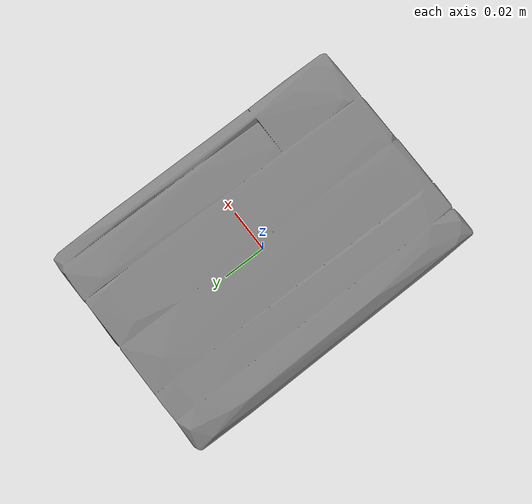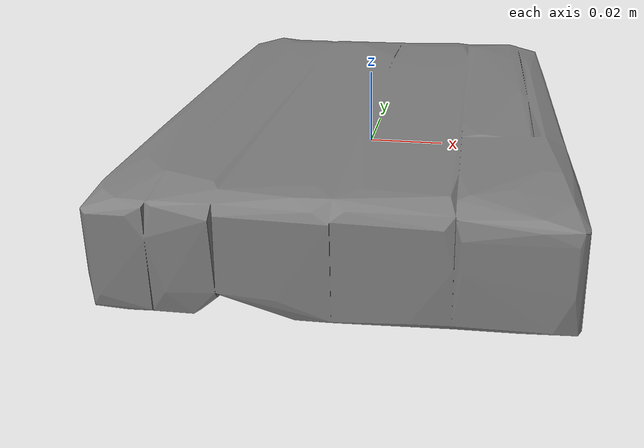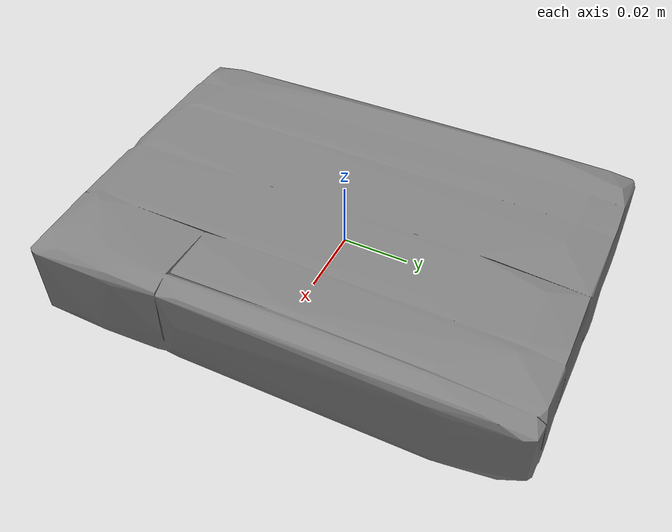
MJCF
<mujoco model="hard_drive_Seagate_Archive_HDD_8_TB_Internal_hard_drive_SATA_6Gbs_35_ST8000AS0002_M">
  <default>
    <default class="visual">
      <geom group="2" type="mesh" contype="0" conaffinity="0" />
    </default>
    <default class="collision">
      <geom group="3" type="mesh" />
    </default>
  </default>
  <asset>
    <mesh file="hard_drive_Seagate_Archive_HDD_8_TB_Internal_hard_drive_SATA_6Gbs_35_ST8000AS0002_M.stl" />
    <mesh file="hard_drive_Seagate_Archive_HDD_8_TB_Internal_hard_drive_SATA_6Gbs_35_ST8000AS0002_M_collision_0.stl" />
    <mesh file="hard_drive_Seagate_Archive_HDD_8_TB_Internal_hard_drive_SATA_6Gbs_35_ST8000AS0002_M_collision_1.stl" />
    <mesh file="hard_drive_Seagate_Archive_HDD_8_TB_Internal_hard_drive_SATA_6Gbs_35_ST8000AS0002_M_collision_2.stl" />
    <mesh file="hard_drive_Seagate_Archive_HDD_8_TB_Internal_hard_drive_SATA_6Gbs_35_ST8000AS0002_M_collision_3.stl" />
    <mesh file="hard_drive_Seagate_Archive_HDD_8_TB_Internal_hard_drive_SATA_6Gbs_35_ST8000AS0002_M_collision_4.stl" />
    <mesh file="hard_drive_Seagate_Archive_HDD_8_TB_Internal_hard_drive_SATA_6Gbs_35_ST8000AS0002_M_collision_5.stl" />
    <mesh file="hard_drive_Seagate_Archive_HDD_8_TB_Internal_hard_drive_SATA_6Gbs_35_ST8000AS0002_M_collision_6.stl" />
    <mesh file="hard_drive_Seagate_Archive_HDD_8_TB_Internal_hard_drive_SATA_6Gbs_35_ST8000AS0002_M_collision_7.stl" />
    <mesh file="hard_drive_Seagate_Archive_HDD_8_TB_Internal_hard_drive_SATA_6Gbs_35_ST8000AS0002_M_collision_8.stl" />
    <mesh file="hard_drive_Seagate_Archive_HDD_8_TB_Internal_hard_drive_SATA_6Gbs_35_ST8000AS0002_M_collision_9.stl" />
    <mesh file="hard_drive_Seagate_Archive_HDD_8_TB_Internal_hard_drive_SATA_6Gbs_35_ST8000AS0002_M_collision_10.stl" />
    <mesh file="hard_drive_Seagate_Archive_HDD_8_TB_Internal_hard_drive_SATA_6Gbs_35_ST8000AS0002_M_collision_11.stl" />
    <mesh file="hard_drive_Seagate_Archive_HDD_8_TB_Internal_hard_drive_SATA_6Gbs_35_ST8000AS0002_M_collision_12.stl" />
    <mesh file="hard_drive_Seagate_Archive_HDD_8_TB_Internal_hard_drive_SATA_6Gbs_35_ST8000AS0002_M_collision_13.stl" />
    <mesh file="hard_drive_Seagate_Archive_HDD_8_TB_Internal_hard_drive_SATA_6Gbs_35_ST8000AS0002_M_collision_14.stl" />
    <mesh file="hard_drive_Seagate_Archive_HDD_8_TB_Internal_hard_drive_SATA_6Gbs_35_ST8000AS0002_M_collision_15.stl" />
  </asset>
  <worldbody>
    <body name="hard_drive_Seagate_Archive_HDD_8_TB_Internal_hard_drive_SATA_6Gbs_35_ST8000AS0002_M">
      <geom mesh="hard_drive_Seagate_Archive_HDD_8_TB_Internal_hard_drive_SATA_6Gbs_35_ST8000AS0002_M" class="visual" />
      <geom mesh="hard_drive_Seagate_Archive_HDD_8_TB_Internal_hard_drive_SATA_6Gbs_35_ST8000AS0002_M_collision_0" class="collision" />
      <geom mesh="hard_drive_Seagate_Archive_HDD_8_TB_Internal_hard_drive_SATA_6Gbs_35_ST8000AS0002_M_collision_1" class="collision" />
      <geom mesh="hard_drive_Seagate_Archive_HDD_8_TB_Internal_hard_drive_SATA_6Gbs_35_ST8000AS0002_M_collision_2" class="collision" />
      <geom mesh="hard_drive_Seagate_Archive_HDD_8_TB_Internal_hard_drive_SATA_6Gbs_35_ST8000AS0002_M_collision_3" class="collision" />
      <geom mesh="hard_drive_Seagate_Archive_HDD_8_TB_Internal_hard_drive_SATA_6Gbs_35_ST8000AS0002_M_collision_4" class="collision" />
      <geom mesh="hard_drive_Seagate_Archive_HDD_8_TB_Internal_hard_drive_SATA_6Gbs_35_ST8000AS0002_M_collision_5" class="collision" />
      <geom mesh="hard_drive_Seagate_Archive_HDD_8_TB_Internal_hard_drive_SATA_6Gbs_35_ST8000AS0002_M_collision_6" class="collision" />
      <geom mesh="hard_drive_Seagate_Archive_HDD_8_TB_Internal_hard_drive_SATA_6Gbs_35_ST8000AS0002_M_collision_7" class="collision" />
      <geom mesh="hard_drive_Seagate_Archive_HDD_8_TB_Internal_hard_drive_SATA_6Gbs_35_ST8000AS0002_M_collision_8" class="collision" />
      <geom mesh="hard_drive_Seagate_Archive_HDD_8_TB_Internal_hard_drive_SATA_6Gbs_35_ST8000AS0002_M_collision_9" class="collision" />
      <geom mesh="hard_drive_Seagate_Archive_HDD_8_TB_Internal_hard_drive_SATA_6Gbs_35_ST8000AS0002_M_collision_10" class="collision" />
      <geom mesh="hard_drive_Seagate_Archive_HDD_8_TB_Internal_hard_drive_SATA_6Gbs_35_ST8000AS0002_M_collision_11" class="collision" />
      <geom mesh="hard_drive_Seagate_Archive_HDD_8_TB_Internal_hard_drive_SATA_6Gbs_35_ST8000AS0002_M_collision_12" class="collision" />
      <geom mesh="hard_drive_Seagate_Archive_HDD_8_TB_Internal_hard_drive_SATA_6Gbs_35_ST8000AS0002_M_collision_13" class="collision" />
      <geom mesh="hard_drive_Seagate_Archive_HDD_8_TB_Internal_hard_drive_SATA_6Gbs_35_ST8000AS0002_M_collision_14" class="collision" />
      <geom mesh="hard_drive_Seagate_Archive_HDD_8_TB_Internal_hard_drive_SATA_6Gbs_35_ST8000AS0002_M_collision_15" class="collision" />
    </body>
  </worldbody>
</mujoco>
